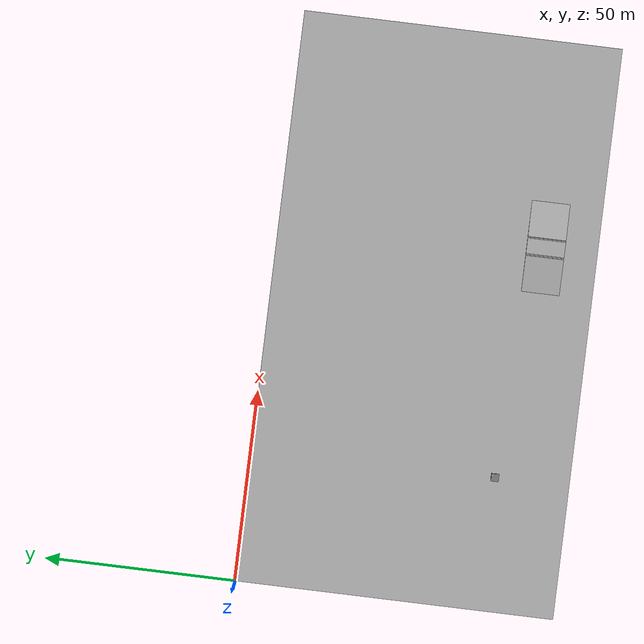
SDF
<sdf version="1.6">
 <world name="default">
  <model name="ground">
   <pose>75 -41.8 0 0 0 1.57</pose>
   <static>1</static>
   <link name="ground">
    <collision name="ground_coll"><geometry><box><size>83.6 150 0.05</size></box></geometry></collision>
    <visual name="ground_vis">
     <geometry><box><size>83.6 150  0.05</size></box></geometry>
     <material><script><uri>./course.material</uri><name>course</name></script></material>
    </visual>
   </link>
  </model>
  <model name="cube">
   <pose>35 -64 1 0 0 0</pose>
   <static>0</static>
   <link name="cube">
    <collision name="collision">
     <geometry><box><size>2 2 2</size></box></geometry>
     <surface>
      <friction><ode><mu>0</mu><mu2>0</mu2></ode></friction>
      <contact><collide_without_contact>0</collide_without_contact></contact>
     </surface>
    </collision>
    <visual name="cube_vis">
     <geometry><box><size>2 2 2</size></box></geometry>
     <material>
      <ambient>0.5 0.5 0.5 1</ambient>
      <diffuse>0.5 0.5 0.5 1</diffuse>
      <specular>0.1 0.1 0.1 1</specular>
      <emissive>0 0 0 1</emissive>
     </material>
    </visual>
   </link>
   <plugin name="cube" filename="libgazebo_ros_planar_move.so">
    <ros>
     <namespace>CUBE</namespace>
     <remapping>cmd_vel:=cmd_demo</remapping>
     <odometryTopic>odom</odometryTopic>
     <odometryFrame>odom</odometryFrame>
     <odometryRate>20.0</odometryRate>
     <robotBaseFrame>base_footprint</robotBaseFrame>
    </ros>
   </plugin>
  </model>
  <include><uri>model://sun</uri></include>
  <model name="uphill">
   <pose>89.1 -70 0.05 0 -0.1 0</pose>
   <static>true</static>
   <link name="link">
    <collision name="collision"><geometry><box><size>10 10 1</size></box></geometry></collision>
    <visual name="visual">
     <geometry><box><size>10 10 1</size></box></geometry>
     <material><script><uri>./hill_up.material</uri><name>hill_up</name></script></material>
    </visual>
   </link>
  </model>
  <model name="flat">
   <pose>96 -70 0.52 0 0 0</pose>
   <static>true</static>
   <link name="link">
    <collision name="collision"><geometry><box><size>5 10 1</size></box></geometry></collision>
    <visual name="visual">
     <geometry><box><size>5 10 1</size></box></geometry>
     <material><script><uri>./hill_mid.material</uri><name>hill_mid</name></script></material>
    </visual>
   </link>
  </model>
  <model name="downhill">
   <pose>103 -70 0.05 0 0.1 0</pose>
   <static>true</static>
   <link name="link">
    <collision name="collision"><geometry><box><size>10 10 1</size></box></geometry></collision>
    <visual name="visual">
     <geometry><box><size>10 10 1</size></box></geometry>
     <material><script><uri>./hill_down.material</uri><name>hill_down</name></script></material>
    </visual>
   </link>
  </model>
 </world>
</sdf>
